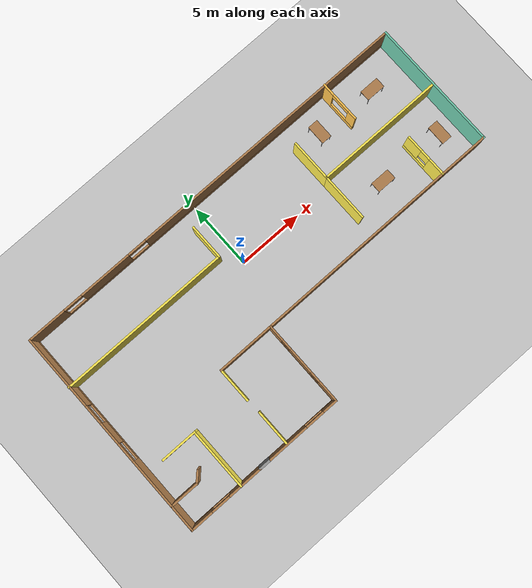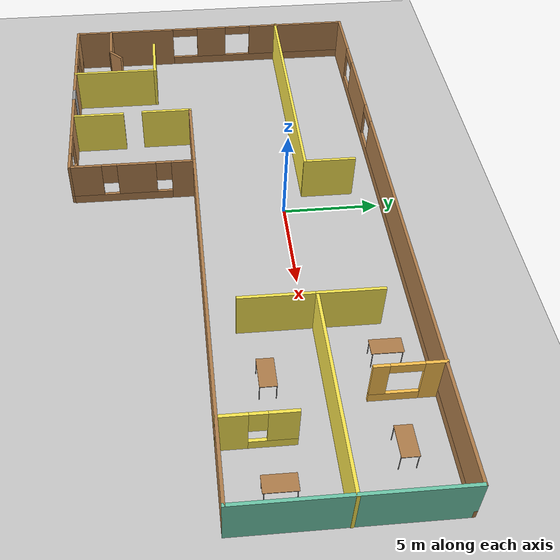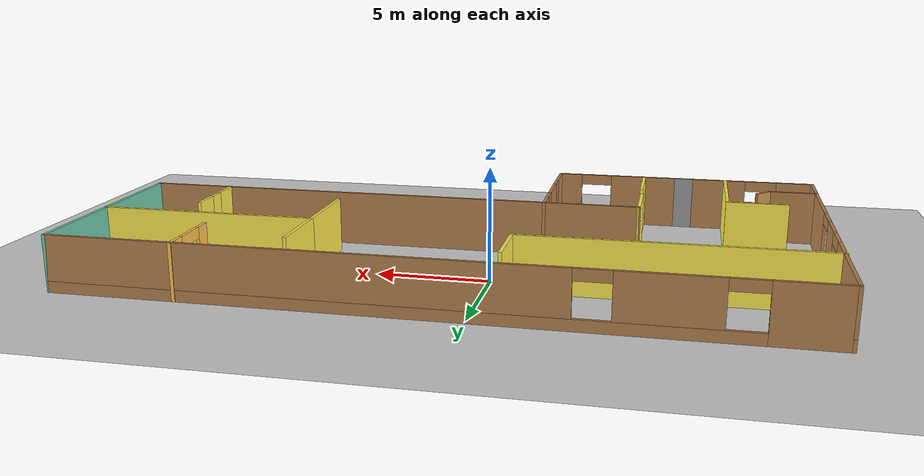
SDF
<sdf version="1.6">
 <world name="default">
  <model name="ground_plane">
   <static>1</static>
   <link name="link">
    <collision name="collision">
     <geometry><plane><normal>0 0 1</normal><size>100 100</size></plane></geometry>
     <surface>
      <contact><collide_bitmask>65535</collide_bitmask></contact>
      <friction><ode><mu>100</mu><mu2>50</mu2></ode></friction>
     </surface>
    </collision>
    <visual name="visual">
     <cast_shadows>0</cast_shadows>
     <geometry><plane><normal>0 0 1</normal><size>100 100</size></plane></geometry>
     <material>
      <script><uri>file://media/materials/scripts/gazebo.material</uri><name>Gazebo/Grey</name></script>
     </material>
    </visual>
   </link>
  </model>
  <model name="Building">
   <pose>1.74375 -2.92955 0 0 -0 0</pose>
   <link name="Door_0">
    <collision name="Door_0_Collision">
     <geometry><box><size>0.9 0.17 2.5</size></box></geometry>
     <pose>0 0 1.25 0 -0 0</pose>
    </collision>
    <visual name="Door_0_Visual">
     <pose>0 0 1.25 0 -0 0</pose>
     <geometry><box><size>0.9 0.17 2.5</size></box></geometry>
     <material>
      <script><uri>file://media/materials/scripts/gazebo.material</uri><name>Gazebo/Grey</name></script>
     </material>
    </visual>
    <pose>-9.65874 -8.18775 0 0 -0 0</pose>
   </link>
   <link name="Wall_1">
    <pose>-12.9888 -8.19111 0 0 -0 3.14159</pose>
    <visual name="Wall_1_Visual_0">
     <pose>-1.645 0 1.25 0 -0 0</pose>
     <geometry><box><size>2.71 0.15 2.5</size></box></geometry>
     <material>
      <script><uri>file://media/materials/scripts/gazebo.material</uri><name>Gazebo/Wood</name></script>
      <ambient>0.435294 0.796078 0.67451 1</ambient>
     </material>
     <meta><layer>0</layer></meta>
    </visual>
    <collision name="Wall_1_Collision_0">
     <geometry><box><size>2.71 0.15 2.5</size></box></geometry>
     <pose>-1.645 0 1.25 0 -0 0</pose>
    </collision>
    <visual name="Wall_1_Visual_1">
     <pose>1.355 0 0.25 0 -0 0</pose>
     <geometry><box><size>3.29 0.15 0.5</size></box></geometry>
     <material>
      <script><uri>file://media/materials/scripts/gazebo.material</uri><name>Gazebo/Wood</name></script>
      <ambient>0.435294 0.796078 0.67451 1</ambient>
     </material>
     <meta><layer>0</layer></meta>
    </visual>
    <collision name="Wall_1_Collision_1">
     <geometry><box><size>3.29 0.15 0.5</size></box></geometry>
     <pose>1.355 0 0.25 0 -0 0</pose>
    </collision>
    <visual name="Wall_1_Visual_2">
     <pose>2.105 0 1.5 0 -0 0</pose>
     <geometry><box><size>1.79 0.15 2</size></box></geometry>
     <material>
      <script><uri>file://media/materials/scripts/gazebo.material</uri><name>Gazebo/Wood</name></script>
      <ambient>0.435294 0.796078 0.67451 1</ambient>
     </material>
     <meta><layer>0</layer></meta>
    </visual>
    <collision name="Wall_1_Collision_2">
     <geometry><box><size>1.79 0.15 2</size></box></geometry>
     <pose>2.105 0 1.5 0 -0 0</pose>
    </collision>
    <visual name="Wall_1_Visual_3">
     <pose>0.46 0 2.25 0 -0 0</pose>
     <geometry><box><size>1.5 0.15 0.5</size></box></geometry>
     <material>
      <script><uri>file://media/materials/scripts/gazebo.material</uri><name>Gazebo/Wood</name></script>
      <ambient>0.435294 0.796078 0.67451 1</ambient>
     </material>
     <meta><layer>0</layer></meta>
    </visual>
    <collision name="Wall_1_Collision_3">
     <geometry><box><size>1.5 0.15 0.5</size></box></geometry>
     <pose>0.46 0 2.25 0 -0 0</pose>
    </collision>
   </link>
   <link name="Wall_11">
    <pose>-15.9138 -0.016115 0 0 -0 1.5708</pose>
    <visual name="Wall_11_Visual_0">
     <pose>-5.28758 0 1.25 0 -0 0</pose>
     <geometry><box><size>5.92484 0.15 2.5</size></box></geometry>
     <material>
      <script><uri>file://media/materials/scripts/gazebo.material</uri><name>Gazebo/Wood</name></script>
      <ambient>0.435294 0.796078 0.67451 1</ambient>
     </material>
     <meta><layer>0</layer></meta>
    </visual>
    <collision name="Wall_11_Collision_0">
     <geometry><box><size>5.92484 0.15 2.5</size></box></geometry>
     <pose>-5.28758 0 1.25 0 -0 0</pose>
    </collision>
    <visual name="Wall_11_Visual_1">
     <pose>2.96242 0 0.25 0 -0 0</pose>
     <geometry><box><size>10.5752 0.15 0.5</size></box></geometry>
     <material>
      <script><uri>file://media/materials/scripts/gazebo.material</uri><name>Gazebo/Wood</name></script>
      <ambient>0.435294 0.796078 0.67451 1</ambient>
     </material>
     <meta><layer>0</layer></meta>
    </visual>
    <collision name="Wall_11_Collision_1">
     <geometry><box><size>10.5752 0.15 0.5</size></box></geometry>
     <pose>2.96242 0 0.25 0 -0 0</pose>
    </collision>
    <visual name="Wall_11_Visual_2">
     <pose>0.058939 0 1.5 0 -0 0</pose>
     <geometry><box><size>1.76821 0.15 2</size></box></geometry>
     <material>
      <script><uri>file://media/materials/scripts/gazebo.material</uri><name>Gazebo/Wood</name></script>
      <ambient>0.435294 0.796078 0.67451 1</ambient>
     </material>
     <meta><layer>0</layer></meta>
    </visual>
    <collision name="Wall_11_Collision_2">
     <geometry><box><size>1.76821 0.15 2</size></box></geometry>
     <pose>0.058939 0 1.5 0 -0 0</pose>
    </collision>
    <visual name="Wall_11_Visual_3">
     <pose>5.34652 0 1.5 0 -0 0</pose>
     <geometry><box><size>5.80696 0.15 2</size></box></geometry>
     <material>
      <script><uri>file://media/materials/scripts/gazebo.material</uri><name>Gazebo/Wood</name></script>
      <ambient>0.435294 0.796078 0.67451 1</ambient>
     </material>
     <meta><layer>0</layer></meta>
    </visual>
    <collision name="Wall_11_Collision_3">
     <geometry><box><size>5.80696 0.15 2</size></box></geometry>
     <pose>5.34652 0 1.5 0 -0 0</pose>
    </collision>
    <visual name="Wall_11_Visual_4">
     <pose>-1.57516 0 2.25 0 -0 0</pose>
     <geometry><box><size>1.5 0.15 0.5</size></box></geometry>
     <material>
      <script><uri>file://media/materials/scripts/gazebo.material</uri><name>Gazebo/Wood</name></script>
      <ambient>0.435294 0.796078 0.67451 1</ambient>
     </material>
     <meta><layer>0</layer></meta>
    </visual>
    <collision name="Wall_11_Collision_4">
     <geometry><box><size>1.5 0.15 0.5</size></box></geometry>
     <pose>-1.57516 0 2.25 0 -0 0</pose>
    </collision>
    <visual name="Wall_11_Visual_5">
     <pose>1.69304 0 2.25 0 -0 0</pose>
     <geometry><box><size>1.5 0.15 0.5</size></box></geometry>
     <material>
      <script><uri>file://media/materials/scripts/gazebo.material</uri><name>Gazebo/Wood</name></script>
      <ambient>0.435294 0.796078 0.67451 1</ambient>
     </material>
     <meta><layer>0</layer></meta>
    </visual>
    <collision name="Wall_11_Collision_5">
     <geometry><box><size>1.5 0.15 0.5</size></box></geometry>
     <pose>1.69304 0 2.25 0 -0 0</pose>
    </collision>
   </link>
   <link name="Wall_12">
    <pose>0.011207 8.15888 0 0 -0 0</pose>
    <visual name="Wall_12_Visual_0">
     <pose>-14.4756 0 1.25 0 -0 0</pose>
     <geometry><box><size>3.04875 0.15 2.5</size></box></geometry>
     <material>
      <script><uri>file://media/materials/scripts/gazebo.material</uri><name>Gazebo/Wood</name></script>
      <ambient>0.435294 0.796078 0.67451 1</ambient>
     </material>
     <meta><layer>0</layer></meta>
    </visual>
    <collision name="Wall_12_Collision_0">
     <geometry><box><size>3.04875 0.15 2.5</size></box></geometry>
     <pose>-14.4756 0 1.25 0 -0 0</pose>
    </collision>
    <visual name="Wall_12_Visual_1">
     <pose>1.52438 0 0.25 0 -0 0</pose>
     <geometry><box><size>28.9513 0.15 0.5</size></box></geometry>
     <material>
      <script><uri>file://media/materials/scripts/gazebo.material</uri><name>Gazebo/Wood</name></script>
      <ambient>0.435294 0.796078 0.67451 1</ambient>
     </material>
     <meta><layer>0</layer></meta>
    </visual>
    <collision name="Wall_12_Collision_1">
     <geometry><box><size>28.9513 0.15 0.5</size></box></geometry>
     <pose>1.52438 0 0.25 0 -0 0</pose>
    </collision>
    <visual name="Wall_12_Visual_2">
     <pose>-9.39504 0 1.5 0 -0 0</pose>
     <geometry><box><size>4.11241 0.15 2</size></box></geometry>
     <material>
      <script><uri>file://media/materials/scripts/gazebo.material</uri><name>Gazebo/Wood</name></script>
      <ambient>0.435294 0.796078 0.67451 1</ambient>
     </material>
     <meta><layer>0</layer></meta>
    </visual>
    <collision name="Wall_12_Collision_2">
     <geometry><box><size>4.11241 0.15 2</size></box></geometry>
     <pose>-9.39504 0 1.5 0 -0 0</pose>
    </collision>
    <visual name="Wall_12_Visual_3">
     <pose>5.08058 0 1.5 0 -0 0</pose>
     <geometry><box><size>21.8388 0.15 2</size></box></geometry>
     <material>
      <script><uri>file://media/materials/scripts/gazebo.material</uri><name>Gazebo/Wood</name></script>
      <ambient>0.435294 0.796078 0.67451 1</ambient>
     </material>
     <meta><layer>0</layer></meta>
    </visual>
    <collision name="Wall_12_Collision_3">
     <geometry><box><size>21.8388 0.15 2</size></box></geometry>
     <pose>5.08058 0 1.5 0 -0 0</pose>
    </collision>
    <visual name="Wall_12_Visual_4">
     <pose>-12.2012 0 2.25 0 -0 0</pose>
     <geometry><box><size>1.5 0.15 0.5</size></box></geometry>
     <material>
      <script><uri>file://media/materials/scripts/gazebo.material</uri><name>Gazebo/Wood</name></script>
      <ambient>0.435294 0.796078 0.67451 1</ambient>
     </material>
     <meta><layer>0</layer></meta>
    </visual>
    <collision name="Wall_12_Collision_4">
     <geometry><box><size>1.5 0.15 0.5</size></box></geometry>
     <pose>-12.2012 0 2.25 0 -0 0</pose>
    </collision>
    <visual name="Wall_12_Visual_5">
     <pose>-6.58884 0 2.25 0 -0 0</pose>
     <geometry><box><size>1.5 0.15 0.5</size></box></geometry>
     <material>
      <script><uri>file://media/materials/scripts/gazebo.material</uri><name>Gazebo/Wood</name></script>
      <ambient>0.435294 0.796078 0.67451 1</ambient>
     </material>
     <meta><layer>0</layer></meta>
    </visual>
    <collision name="Wall_12_Collision_5">
     <geometry><box><size>1.5 0.15 0.5</size></box></geometry>
     <pose>-6.58884 0 2.25 0 -0 0</pose>
    </collision>
   </link>
   <link name="Wall_13">
    <collision name="Wall_13_Collision">
     <geometry><box><size>10 0.15 2.5</size></box></geometry>
     <pose>0 0 1.25 0 -0 0</pose>
    </collision>
    <visual name="Wall_13_Visual">
     <pose>0 0 1.25 0 -0 0</pose>
     <geometry><box><size>10 0.15 2.5</size></box></geometry>
     <material>
      <script><uri>file://media/materials/scripts/gazebo.material</uri><name>Gazebo/Grey</name></script>
      <ambient>0.435294 0.796078 0.67451 1</ambient>
     </material>
     <meta><layer>0</layer></meta>
    </visual>
    <pose>15.9362 3.23388 0 0 -0 -1.5708</pose>
   </link>
   <link name="Wall_14">
    <collision name="Wall_14_Collision">
     <geometry><box><size>19.4856 0.15 2.5</size></box></geometry>
     <pose>0 0 1.25 0 -0 0</pose>
    </collision>
    <visual name="Wall_14_Visual">
     <pose>0 0 1.25 0 -0 0</pose>
     <geometry><box><size>19.4856 0.15 2.5</size></box></geometry>
     <material>
      <script><uri>file://media/materials/scripts/gazebo.material</uri><name>Gazebo/Wood</name></script>
      <ambient>0.435294 0.796078 0.67451 1</ambient>
     </material>
     <meta><layer>0</layer></meta>
    </visual>
    <pose>6.26821 -1.69111 0 0 -0 3.14159</pose>
   </link>
   <link name="Wall_15">
    <pose>-3.39979 -4.87312 0 0 -0 -1.5708</pose>
    <visual name="Wall_15_Visual_0">
     <pose>-2.61589 0 1.25 0 -0 0</pose>
     <geometry><box><size>1.28264 0.15 2.5</size></box></geometry>
     <material>
      <script><uri>file://media/materials/scripts/gazebo.material</uri><name>Gazebo/Wood</name></script>
      <ambient>0.435294 0.796078 0.67451 1</ambient>
     </material>
     <meta><layer>0</layer></meta>
    </visual>
    <collision name="Wall_15_Collision_0">
     <geometry><box><size>1.28264 0.15 2.5</size></box></geometry>
     <pose>-2.61589 0 1.25 0 -0 0</pose>
    </collision>
    <visual name="Wall_15_Visual_1">
     <pose>0.641319 0 0.25 0 -0 0</pose>
     <geometry><box><size>5.23177 0.15 0.5</size></box></geometry>
     <material>
      <script><uri>file://media/materials/scripts/gazebo.material</uri><name>Gazebo/Wood</name></script>
      <ambient>0.435294 0.796078 0.67451 1</ambient>
     </material>
     <meta><layer>0</layer></meta>
    </visual>
    <collision name="Wall_15_Collision_1">
     <geometry><box><size>5.23177 0.15 0.5</size></box></geometry>
     <pose>0.641319 0 0.25 0 -0 0</pose>
    </collision>
    <visual name="Wall_15_Visual_2">
     <pose>-0.15997 0 1.5 0 -0 0</pose>
     <geometry><box><size>2.02919 0.15 2</size></box></geometry>
     <material>
      <script><uri>file://media/materials/scripts/gazebo.material</uri><name>Gazebo/Wood</name></script>
      <ambient>0.435294 0.796078 0.67451 1</ambient>
     </material>
     <meta><layer>0</layer></meta>
    </visual>
    <collision name="Wall_15_Collision_2">
     <geometry><box><size>2.02919 0.15 2</size></box></geometry>
     <pose>-0.15997 0 1.5 0 -0 0</pose>
    </collision>
    <visual name="Wall_15_Visual_3">
     <pose>2.45592 0 1.5 0 -0 0</pose>
     <geometry><box><size>1.60258 0.15 2</size></box></geometry>
     <material>
      <script><uri>file://media/materials/scripts/gazebo.material</uri><name>Gazebo/Wood</name></script>
      <ambient>0.435294 0.796078 0.67451 1</ambient>
     </material>
     <meta><layer>0</layer></meta>
    </visual>
    <collision name="Wall_15_Collision_3">
     <geometry><box><size>1.60258 0.15 2</size></box></geometry>
     <pose>2.45592 0 1.5 0 -0 0</pose>
    </collision>
    <visual name="Wall_15_Visual_4">
     <pose>-1.57457 0 1.9 0 -0 0</pose>
     <geometry><box><size>0.8 0.15 1.2</size></box></geometry>
     <material>
      <script><uri>file://media/materials/scripts/gazebo.material</uri><name>Gazebo/Wood</name></script>
      <ambient>0.435294 0.796078 0.67451 1</ambient>
     </material>
     <meta><layer>0</layer></meta>
    </visual>
    <collision name="Wall_15_Collision_4">
     <geometry><box><size>0.8 0.15 1.2</size></box></geometry>
     <pose>-1.57457 0 1.9 0 -0 0</pose>
    </collision>
    <visual name="Wall_15_Visual_5">
     <pose>1.25463 0 1.9 0 -0 0</pose>
     <geometry><box><size>0.8 0.15 1.2</size></box></geometry>
     <material>
      <script><uri>file://media/materials/scripts/gazebo.material</uri><name>Gazebo/Wood</name></script>
      <ambient>0.435294 0.796078 0.67451 1</ambient>
     </material>
     <meta><layer>0</layer></meta>
    </visual>
    <collision name="Wall_15_Collision_5">
     <geometry><box><size>0.8 0.15 1.2</size></box></geometry>
     <pose>1.25463 0 1.9 0 -0 0</pose>
    </collision>
   </link>
   <link name="Wall_20">
    <collision name="Wall_20_Collision">
     <geometry><box><size>4.5 0.15 2.5</size></box></geometry>
     <pose>0 0 1.25 0 -0 0</pose>
    </collision>
    <visual name="Wall_20_Visual">
     <pose>0 0 1.25 0 -0 0</pose>
     <geometry><box><size>4.5 0.15 2.5</size></box></geometry>
     <material>
      <script><uri>file://media/materials/scripts/gazebo.material</uri><name>Gazebo/Wood</name></script>
      <ambient>0.988235 0.913725 0.309804 1</ambient>
     </material>
     <meta><layer>0</layer></meta>
    </visual>
    <pose>-5.57479 -1.69111 0 0 -0 -3.14159</pose>
   </link>
   <link name="Wall_21">
    <collision name="Wall_21_Collision">
     <geometry><box><size>2.76441 0.15 2.5</size></box></geometry>
     <pose>0 0 1.25 0 -0 0</pose>
    </collision>
    <visual name="Wall_21_Visual">
     <pose>0 0 1.25 0 -0 0</pose>
     <geometry><box><size>2.76441 0.15 2.5</size></box></geometry>
     <material>
      <script><uri>file://media/materials/scripts/gazebo.material</uri><name>Gazebo/Grey</name></script>
      <ambient>0.988235 0.913725 0.309804 1</ambient>
     </material>
     <meta><layer>0</layer></meta>
    </visual>
    <pose>-7.74959 -2.99832 0 0 -0 -1.57064</pose>
   </link>
   <link name="Wall_23">
    <collision name="Wall_23_Collision">
     <geometry><box><size>2.75 0.15 2.5</size></box></geometry>
     <pose>0 0 1.25 0 -0 0</pose>
    </collision>
    <visual name="Wall_23_Visual">
     <pose>0 0 1.25 0 -0 0</pose>
     <geometry><box><size>2.75 0.15 2.5</size></box></geometry>
     <material>
      <script><uri>file://media/materials/scripts/gazebo.material</uri><name>Gazebo/Grey</name></script>
      <ambient>0.988235 0.913725 0.309804 1</ambient>
     </material>
     <meta><layer>0</layer></meta>
    </visual>
    <pose>-7.68166 -6.75545 0 0 -0 -1.5708</pose>
   </link>
   <link name="Wall_27">
    <collision name="Wall_27_Collision">
     <geometry><box><size>10 0.15 2.5</size></box></geometry>
     <pose>0 0 1.25 0 -0 0</pose>
    </collision>
    <visual name="Wall_27_Visual">
     <pose>0 0 1.25 0 -0 0</pose>
     <geometry><box><size>10 0.15 2.5</size></box></geometry>
     <material>
      <script><uri>file://media/materials/scripts/gazebo.material</uri><name>Gazebo/Grey</name></script>
      <ambient>0.988235 0.913725 0.309804 1</ambient>
     </material>
     <meta><layer>0</layer></meta>
    </visual>
    <pose>11.0323 3.33245 0 0 -0 3.14159</pose>
   </link>
   <link name="Wall_28">
    <collision name="Wall_28_Collision">
     <geometry><box><size>3.25 0.15 2.5</size></box></geometry>
     <pose>0 0 1.25 0 -0 0</pose>
    </collision>
    <visual name="Wall_28_Visual">
     <pose>0 0 1.25 0 -0 0</pose>
     <geometry><box><size>3.25 0.15 2.5</size></box></geometry>
     <material>
      <script><uri>file://media/materials/scripts/gazebo.material</uri><name>Gazebo/Grey</name></script>
      <ambient>0.988235 0.913725 0.309804 1</ambient>
     </material>
     <meta><layer>0</layer></meta>
    </visual>
    <pose>6.10728 4.88245 0 0 -0 1.5708</pose>
   </link>
   <link name="Wall_3">
    <pose>-6.29879 -8.19111 0 0 -0 0</pose>
    <visual name="Wall_3_Visual_0">
     <pose>-1.32758 0 1.25 0 -0 0</pose>
     <geometry><box><size>3.24484 0.15 2.5</size></box></geometry>
     <material>
      <script><uri>file://media/materials/scripts/gazebo.material</uri><name>Gazebo/Wood</name></script>
      <ambient>0.435294 0.796078 0.67451 1</ambient>
     </material>
     <meta><layer>0</layer></meta>
    </visual>
    <collision name="Wall_3_Collision_0">
     <geometry><box><size>3.24484 0.15 2.5</size></box></geometry>
     <pose>-1.32758 0 1.25 0 -0 0</pose>
    </collision>
    <visual name="Wall_3_Visual_1">
     <pose>1.62242 0 0.25 0 -0 0</pose>
     <geometry><box><size>2.65516 0.15 0.5</size></box></geometry>
     <material>
      <script><uri>file://media/materials/scripts/gazebo.material</uri><name>Gazebo/Wood</name></script>
      <ambient>0.435294 0.796078 0.67451 1</ambient>
     </material>
     <meta><layer>0</layer></meta>
    </visual>
    <collision name="Wall_3_Collision_1">
     <geometry><box><size>2.65516 0.15 0.5</size></box></geometry>
     <pose>1.62242 0 0.25 0 -0 0</pose>
    </collision>
    <visual name="Wall_3_Visual_2">
     <pose>2.37242 0 1.5 0 -0 0</pose>
     <geometry><box><size>1.15516 0.15 2</size></box></geometry>
     <material>
      <script><uri>file://media/materials/scripts/gazebo.material</uri><name>Gazebo/Wood</name></script>
      <ambient>0.435294 0.796078 0.67451 1</ambient>
     </material>
     <meta><layer>0</layer></meta>
    </visual>
    <collision name="Wall_3_Collision_2">
     <geometry><box><size>1.15516 0.15 2</size></box></geometry>
     <pose>2.37242 0 1.5 0 -0 0</pose>
    </collision>
    <visual name="Wall_3_Visual_3">
     <pose>1.04484 0 2.25 0 -0 0</pose>
     <geometry><box><size>1.5 0.15 0.5</size></box></geometry>
     <material>
      <script><uri>file://media/materials/scripts/gazebo.material</uri><name>Gazebo/Wood</name></script>
      <ambient>0.435294 0.796078 0.67451 1</ambient>
     </material>
     <meta><layer>0</layer></meta>
    </visual>
    <collision name="Wall_3_Collision_3">
     <geometry><box><size>1.5 0.15 0.5</size></box></geometry>
     <pose>1.04484 0 2.25 0 -0 0</pose>
    </collision>
   </link>
   <link name="Wall_30">
    <collision name="Wall_30_Collision">
     <geometry><box><size>3.75 0.15 2.5</size></box></geometry>
     <pose>0 0 1.25 0 -0 0</pose>
    </collision>
    <visual name="Wall_30_Visual">
     <pose>0 0 1.25 0 -0 0</pose>
     <geometry><box><size>3.75 0.15 2.5</size></box></geometry>
     <material>
      <script><uri>file://media/materials/scripts/gazebo.material</uri><name>Gazebo/Grey</name></script>
      <ambient>0.988235 0.913725 0.309804 1</ambient>
     </material>
     <meta><layer>0</layer></meta>
    </visual>
    <pose>6.10728 1.53245 0 0 -0 -1.5708</pose>
   </link>
   <link name="Wall_32">
    <collision name="Wall_32_Collision">
     <geometry><box><size>13.25 0.15 2.5</size></box></geometry>
     <pose>0 0 1.25 0 -0 0</pose>
    </collision>
    <visual name="Wall_32_Visual">
     <pose>0 0 1.25 0 -0 0</pose>
     <geometry><box><size>13.25 0.15 2.5</size></box></geometry>
     <material>
      <script><uri>file://media/materials/scripts/gazebo.material</uri><name>Gazebo/Grey</name></script>
      <ambient>0.988235 0.913725 0.309804 1</ambient>
     </material>
     <meta><layer>0</layer></meta>
    </visual>
    <pose>-9.40728 4.07713 0 0 -0 0</pose>
   </link>
   <link name="Wall_33">
    <collision name="Wall_33_Collision">
     <geometry><box><size>2.75 0.15 2.5</size></box></geometry>
     <pose>0 0 1.25 0 -0 0</pose>
    </collision>
    <visual name="Wall_33_Visual">
     <pose>0 0 1.25 0 -0 0</pose>
     <geometry><box><size>2.75 0.15 2.5</size></box></geometry>
     <material>
      <script><uri>file://media/materials/scripts/gazebo.material</uri><name>Gazebo/Grey</name></script>
      <ambient>0.988235 0.913725 0.309804 1</ambient>
     </material>
     <meta><layer>0</layer></meta>
    </visual>
    <pose>-2.85728 5.37713 0 0 -0 1.5708</pose>
   </link>
   <link name="Wall_37">
    <pose>12.1544 -0.018507 0 0 -0 1.5708</pose>
    <visual name="Wall_37_Visual_0">
     <pose>-1.05653 0 1.25 0 -0 0</pose>
     <geometry><box><size>1.38694 0.15 2.5</size></box></geometry>
     <material>
      <script><uri>file://media/materials/scripts/gazebo.material</uri><name>Gazebo/Grey</name></script>
      <ambient>0.988235 0.913725 0.309804 1</ambient>
     </material>
     <meta><layer>0</layer></meta>
    </visual>
    <collision name="Wall_37_Collision_0">
     <geometry><box><size>1.38694 0.15 2.5</size></box></geometry>
     <pose>-1.05653 0 1.25 0 -0 0</pose>
    </collision>
    <visual name="Wall_37_Visual_1">
     <pose>0.693471 0 0.25 0 -0 0</pose>
     <geometry><box><size>2.11306 0.15 0.5</size></box></geometry>
     <material>
      <script><uri>file://media/materials/scripts/gazebo.material</uri><name>Gazebo/Grey</name></script>
      <ambient>0.988235 0.913725 0.309804 1</ambient>
     </material>
     <meta><layer>0</layer></meta>
    </visual>
    <collision name="Wall_37_Collision_1">
     <geometry><box><size>2.11306 0.15 0.5</size></box></geometry>
     <pose>0.693471 0 0.25 0 -0 0</pose>
    </collision>
    <visual name="Wall_37_Visual_2">
     <pose>1.09347 0 1.5 0 -0 0</pose>
     <geometry><box><size>1.31306 0.15 2</size></box></geometry>
     <material>
      <script><uri>file://media/materials/scripts/gazebo.material</uri><name>Gazebo/Grey</name></script>
      <ambient>0.988235 0.913725 0.309804 1</ambient>
     </material>
     <meta><layer>0</layer></meta>
    </visual>
    <collision name="Wall_37_Collision_2">
     <geometry><box><size>1.31306 0.15 2</size></box></geometry>
     <pose>1.09347 0 1.5 0 -0 0</pose>
    </collision>
    <visual name="Wall_37_Visual_3">
     <pose>0.036942 0 1.9 0 -0 0</pose>
     <geometry><box><size>0.8 0.15 1.2</size></box></geometry>
     <material>
      <script><uri>file://media/materials/scripts/gazebo.material</uri><name>Gazebo/Grey</name></script>
      <ambient>0.988235 0.913725 0.309804 1</ambient>
     </material>
     <meta><layer>0</layer></meta>
    </visual>
    <collision name="Wall_37_Collision_3">
     <geometry><box><size>0.8 0.15 1.2</size></box></geometry>
     <pose>0.036942 0 1.9 0 -0 0</pose>
    </collision>
   </link>
   <link name="Wall_39">
    <collision name="Wall_39_Collision">
     <geometry><box><size>4.75 0.15 2.5</size></box></geometry>
     <pose>0 0 1.25 0 -0 0</pose>
    </collision>
    <visual name="Wall_39_Visual">
     <pose>0 0 1.25 0 -0 0</pose>
     <geometry><box><size>4.75 0.15 2.5</size></box></geometry>
     <material>
      <script><uri>file://media/materials/scripts/gazebo.material</uri><name>Gazebo/Grey</name></script>
      <ambient>0.988235 0.913725 0.309804 1</ambient>
     </material>
     <meta><layer>0</layer></meta>
    </visual>
    <pose>-11.7048 -5.87777 0 0 -0 1.5708</pose>
   </link>
   <link name="Wall_40">
    <collision name="Wall_40_Collision">
     <geometry><box><size>2.84281 0.15 2.5</size></box></geometry>
     <pose>0 0 1.25 0 -0 0</pose>
    </collision>
    <visual name="Wall_40_Visual">
     <pose>0 0 1.25 0 -0 0</pose>
     <geometry><box><size>2.84281 0.15 2.5</size></box></geometry>
     <material>
      <script><uri>file://media/materials/scripts/gazebo.material</uri><name>Gazebo/Grey</name></script>
      <ambient>0.988235 0.913725 0.309804 1</ambient>
     </material>
     <meta><layer>0</layer></meta>
    </visual>
    <pose>-13.0509 -3.56347 0 0 -0 3.14159</pose>
   </link>
   <link name="Wall_42">
    <pose>10.3041 6.64112 0 0 -0 -1.5708</pose>
    <visual name="Wall_42_Visual_0">
     <pose>-1.11989 0 1.25 0 -0 0</pose>
     <geometry><box><size>1.01023 0.15 2.5</size></box></geometry>
     <material>
      <script><uri>file://media/materials/scripts/gazebo.material</uri><name>Gazebo/Grey</name></script>
      <ambient>1 0.764706 0.305882 1</ambient>
     </material>
     <meta><layer>0</layer></meta>
    </visual>
    <collision name="Wall_42_Collision_0">
     <geometry><box><size>1.01023 0.15 2.5</size></box></geometry>
     <pose>-1.11989 0 1.25 0 -0 0</pose>
    </collision>
    <visual name="Wall_42_Visual_1">
     <pose>0.505115 0 0.25 0 -0 0</pose>
     <geometry><box><size>2.23977 0.15 0.5</size></box></geometry>
     <material>
      <script><uri>file://media/materials/scripts/gazebo.material</uri><name>Gazebo/Grey</name></script>
      <ambient>1 0.764706 0.305882 1</ambient>
     </material>
     <meta><layer>0</layer></meta>
    </visual>
    <collision name="Wall_42_Collision_1">
     <geometry><box><size>2.23977 0.15 0.5</size></box></geometry>
     <pose>0.505115 0 0.25 0 -0 0</pose>
    </collision>
    <visual name="Wall_42_Visual_2">
     <pose>1.25511 0 1.5 0 -0 0</pose>
     <geometry><box><size>0.73977 0.15 2</size></box></geometry>
     <material>
      <script><uri>file://media/materials/scripts/gazebo.material</uri><name>Gazebo/Grey</name></script>
      <ambient>1 0.764706 0.305882 1</ambient>
     </material>
     <meta><layer>0</layer></meta>
    </visual>
    <collision name="Wall_42_Collision_2">
     <geometry><box><size>0.73977 0.15 2</size></box></geometry>
     <pose>1.25511 0 1.5 0 -0 0</pose>
    </collision>
    <visual name="Wall_42_Visual_3">
     <pose>0.13523 0 2.25 0 -0 0</pose>
     <geometry><box><size>1.5 0.15 0.5</size></box></geometry>
     <material>
      <script><uri>file://media/materials/scripts/gazebo.material</uri><name>Gazebo/Grey</name></script>
      <ambient>1 0.764706 0.305882 1</ambient>
     </material>
     <meta><layer>0</layer></meta>
    </visual>
    <collision name="Wall_42_Collision_3">
     <geometry><box><size>1.5 0.15 0.5</size></box></geometry>
     <pose>0.13523 0 2.25 0 -0 0</pose>
    </collision>
   </link>
   <link name="Wall_44">
    <collision name="Wall_44_Collision">
     <geometry><box><size>2.25 0.15 2.5</size></box></geometry>
     <pose>0 0 1.25 0 -0 0</pose>
    </collision>
    <visual name="Wall_44_Visual">
     <pose>0 0 1.25 0 -0 0</pose>
     <geometry><box><size>2.25 0.15 2.5</size></box></geometry>
     <material>
      <script><uri>file://media/materials/scripts/gazebo.material</uri><name>Gazebo/Wood</name></script>
      <ambient>1 1 1 1</ambient>
     </material>
     <meta><layer>0</layer></meta>
    </visual>
    <pose>-14.8157 -6.17006 0 0 -0 0</pose>
   </link>
   <link name="Wall_45">
    <collision name="Wall_45_Collision">
     <geometry><box><size>1 0.15 2.5</size></box></geometry>
     <pose>0 0 1.25 0 -0 0</pose>
    </collision>
    <visual name="Wall_45_Visual">
     <pose>0 0 1.25 0 -0 0</pose>
     <geometry><box><size>1 0.15 2.5</size></box></geometry>
     <material>
      <script><uri>file://media/materials/scripts/gazebo.material</uri><name>Gazebo/Wood</name></script>
      <ambient>1 1 1 1</ambient>
     </material>
     <meta><layer>0</layer></meta>
    </visual>
    <pose>-13.4652 -5.86954 0 0 -0 0.785398</pose>
   </link>
   <static>1</static>
  </model>
  <model name="table_2">
   <static>1</static>
   <link name="link">
    <collision name="surface">
     <pose>0 0 1 0 -0 0</pose>
     <geometry><box><size>1.5 0.8 0.03</size></box></geometry>
     <surface><friction><ode><mu>0.6</mu><mu2>0.6</mu2></ode></friction></surface>
    </collision>
    <visual name="visual1">
     <pose>0 0 1 0 -0 0</pose>
     <geometry><box><size>1.5 0.8 0.03</size></box></geometry>
     <material>
      <script><uri>file://media/materials/scripts/gazebo.material</uri><name>Gazebo/Wood</name></script>
     </material>
    </visual>
    <collision name="front_left_leg">
     <pose>0.68 0.38 0.5 0 -0 0</pose>
     <geometry><cylinder><radius>0.02</radius><length>1</length></cylinder></geometry>
    </collision>
    <visual name="front_left_leg">
     <pose>0.68 0.38 0.5 0 -0 0</pose>
     <geometry><cylinder><radius>0.02</radius><length>1</length></cylinder></geometry>
     <material>
      <script><uri>file://media/materials/scripts/gazebo.material</uri><name>Gazebo/Grey</name></script>
     </material>
    </visual>
    <collision name="front_right_leg">
     <pose>0.68 -0.38 0.5 0 -0 0</pose>
     <geometry><cylinder><radius>0.02</radius><length>1</length></cylinder></geometry>
    </collision>
    <visual name="front_right_leg">
     <pose>0.68 -0.38 0.5 0 -0 0</pose>
     <geometry><cylinder><radius>0.02</radius><length>1</length></cylinder></geometry>
     <material>
      <script><uri>file://media/materials/scripts/gazebo.material</uri><name>Gazebo/Grey</name></script>
     </material>
    </visual>
    <collision name="back_right_leg">
     <pose>-0.68 -0.38 0.5 0 -0 0</pose>
     <geometry><cylinder><radius>0.02</radius><length>1</length></cylinder></geometry>
    </collision>
    <visual name="back_right_leg">
     <pose>-0.68 -0.38 0.5 0 -0 0</pose>
     <geometry><cylinder><radius>0.02</radius><length>1</length></cylinder></geometry>
     <material>
      <script><uri>file://media/materials/scripts/gazebo.material</uri><name>Gazebo/Grey</name></script>
     </material>
    </visual>
    <collision name="back_left_leg">
     <pose>-0.68 0.38 0.5 0 -0 0</pose>
     <geometry><cylinder><radius>0.02</radius><length>1</length></cylinder></geometry>
    </collision>
    <visual name="back_left_leg">
     <pose>-0.68 0.38 0.5 0 -0 0</pose>
     <geometry><cylinder><radius>0.02</radius><length>1</length></cylinder></geometry>
     <material>
      <script><uri>file://media/materials/scripts/gazebo.material</uri><name>Gazebo/Grey</name></script>
     </material>
    </visual>
   </link>
   <pose>10.9334 -2.20612 0 0 -0 0</pose>
  </model>
  <model name="table_3">
   <static>1</static>
   <link name="link">
    <collision name="surface">
     <pose>0 0 1 0 -0 0</pose>
     <geometry><box><size>1.5 0.8 0.03</size></box></geometry>
     <surface><friction><ode><mu>0.6</mu><mu2>0.6</mu2></ode></friction></surface>
    </collision>
    <visual name="visual1">
     <pose>0 0 1 0 -0 0</pose>
     <geometry><box><size>1.5 0.8 0.03</size></box></geometry>
     <material>
      <script><uri>file://media/materials/scripts/gazebo.material</uri><name>Gazebo/Wood</name></script>
     </material>
    </visual>
    <collision name="front_left_leg">
     <pose>0.68 0.38 0.5 0 -0 0</pose>
     <geometry><cylinder><radius>0.02</radius><length>1</length></cylinder></geometry>
    </collision>
    <visual name="front_left_leg">
     <pose>0.68 0.38 0.5 0 -0 0</pose>
     <geometry><cylinder><radius>0.02</radius><length>1</length></cylinder></geometry>
     <material>
      <script><uri>file://media/materials/scripts/gazebo.material</uri><name>Gazebo/Grey</name></script>
     </material>
    </visual>
    <collision name="front_right_leg">
     <pose>0.68 -0.38 0.5 0 -0 0</pose>
     <geometry><cylinder><radius>0.02</radius><length>1</length></cylinder></geometry>
    </collision>
    <visual name="front_right_leg">
     <pose>0.68 -0.38 0.5 0 -0 0</pose>
     <geometry><cylinder><radius>0.02</radius><length>1</length></cylinder></geometry>
     <material>
      <script><uri>file://media/materials/scripts/gazebo.material</uri><name>Gazebo/Grey</name></script>
     </material>
    </visual>
    <collision name="back_right_leg">
     <pose>-0.68 -0.38 0.5 0 -0 0</pose>
     <geometry><cylinder><radius>0.02</radius><length>1</length></cylinder></geometry>
    </collision>
    <visual name="back_right_leg">
     <pose>-0.68 -0.38 0.5 0 -0 0</pose>
     <geometry><cylinder><radius>0.02</radius><length>1</length></cylinder></geometry>
     <material>
      <script><uri>file://media/materials/scripts/gazebo.material</uri><name>Gazebo/Grey</name></script>
     </material>
    </visual>
    <collision name="back_left_leg">
     <pose>-0.68 0.38 0.5 0 -0 0</pose>
     <geometry><cylinder><radius>0.02</radius><length>1</length></cylinder></geometry>
    </collision>
    <visual name="back_left_leg">
     <pose>-0.68 0.38 0.5 0 -0 0</pose>
     <geometry><cylinder><radius>0.02</radius><length>1</length></cylinder></geometry>
     <material>
      <script><uri>file://media/materials/scripts/gazebo.material</uri><name>Gazebo/Grey</name></script>
     </material>
    </visual>
   </link>
   <pose>14.7616 3.11764 0 0 -0 0</pose>
  </model>
  <model name="table_clone_3">
   <static>1</static>
   <link name="link">
    <collision name="surface">
     <pose>0 0 1 0 -0 0</pose>
     <geometry><box><size>1.5 0.8 0.03</size></box></geometry>
     <surface><friction><ode><mu>0.6</mu><mu2>0.6</mu2></ode></friction></surface>
    </collision>
    <visual name="visual1">
     <pose>0 0 1 0 -0 0</pose>
     <geometry><box><size>1.5 0.8 0.03</size></box></geometry>
     <material>
      <script><uri>file://media/materials/scripts/gazebo.material</uri><name>Gazebo/Wood</name></script>
     </material>
    </visual>
    <collision name="front_left_leg">
     <pose>0.68 0.38 0.5 0 -0 0</pose>
     <geometry><cylinder><radius>0.02</radius><length>1</length></cylinder></geometry>
    </collision>
    <visual name="front_left_leg">
     <pose>0.68 0.38 0.5 0 -0 0</pose>
     <geometry><cylinder><radius>0.02</radius><length>1</length></cylinder></geometry>
     <material>
      <script><uri>file://media/materials/scripts/gazebo.material</uri><name>Gazebo/Grey</name></script>
     </material>
    </visual>
    <collision name="front_right_leg">
     <pose>0.68 -0.38 0.5 0 -0 0</pose>
     <geometry><cylinder><radius>0.02</radius><length>1</length></cylinder></geometry>
    </collision>
    <visual name="front_right_leg">
     <pose>0.68 -0.38 0.5 0 -0 0</pose>
     <geometry><cylinder><radius>0.02</radius><length>1</length></cylinder></geometry>
     <material>
      <script><uri>file://media/materials/scripts/gazebo.material</uri><name>Gazebo/Grey</name></script>
     </material>
    </visual>
    <collision name="back_right_leg">
     <pose>-0.68 -0.38 0.5 0 -0 0</pose>
     <geometry><cylinder><radius>0.02</radius><length>1</length></cylinder></geometry>
    </collision>
    <visual name="back_right_leg">
     <pose>-0.68 -0.38 0.5 0 -0 0</pose>
     <geometry><cylinder><radius>0.02</radius><length>1</length></cylinder></geometry>
     <material>
      <script><uri>file://media/materials/scripts/gazebo.material</uri><name>Gazebo/Grey</name></script>
     </material>
    </visual>
    <collision name="back_left_leg">
     <pose>-0.68 0.38 0.5 0 -0 0</pose>
     <geometry><cylinder><radius>0.02</radius><length>1</length></cylinder></geometry>
    </collision>
    <visual name="back_left_leg">
     <pose>-0.68 0.38 0.5 0 -0 0</pose>
     <geometry><cylinder><radius>0.02</radius><length>1</length></cylinder></geometry>
     <material>
      <script><uri>file://media/materials/scripts/gazebo.material</uri><name>Gazebo/Grey</name></script>
     </material>
    </visual>
   </link>
   <pose>16.1844 -2.27163 0 0 0 -1.57545</pose>
  </model>
  <model name="table_clone_4">
   <static>1</static>
   <link name="link">
    <collision name="surface">
     <pose>0 0 1 0 -0 0</pose>
     <geometry><box><size>1.5 0.8 0.03</size></box></geometry>
     <surface><friction><ode><mu>0.6</mu><mu2>0.6</mu2></ode></friction></surface>
    </collision>
    <visual name="visual1">
     <pose>0 0 1 0 -0 0</pose>
     <geometry><box><size>1.5 0.8 0.03</size></box></geometry>
     <material>
      <script><uri>file://media/materials/scripts/gazebo.material</uri><name>Gazebo/Wood</name></script>
     </material>
    </visual>
    <collision name="front_left_leg">
     <pose>0.68 0.38 0.5 0 -0 0</pose>
     <geometry><cylinder><radius>0.02</radius><length>1</length></cylinder></geometry>
    </collision>
    <visual name="front_left_leg">
     <pose>0.68 0.38 0.5 0 -0 0</pose>
     <geometry><cylinder><radius>0.02</radius><length>1</length></cylinder></geometry>
     <material>
      <script><uri>file://media/materials/scripts/gazebo.material</uri><name>Gazebo/Grey</name></script>
     </material>
    </visual>
    <collision name="front_right_leg">
     <pose>0.68 -0.38 0.5 0 -0 0</pose>
     <geometry><cylinder><radius>0.02</radius><length>1</length></cylinder></geometry>
    </collision>
    <visual name="front_right_leg">
     <pose>0.68 -0.38 0.5 0 -0 0</pose>
     <geometry><cylinder><radius>0.02</radius><length>1</length></cylinder></geometry>
     <material>
      <script><uri>file://media/materials/scripts/gazebo.material</uri><name>Gazebo/Grey</name></script>
     </material>
    </visual>
    <collision name="back_right_leg">
     <pose>-0.68 -0.38 0.5 0 -0 0</pose>
     <geometry><cylinder><radius>0.02</radius><length>1</length></cylinder></geometry>
    </collision>
    <visual name="back_right_leg">
     <pose>-0.68 -0.38 0.5 0 -0 0</pose>
     <geometry><cylinder><radius>0.02</radius><length>1</length></cylinder></geometry>
     <material>
      <script><uri>file://media/materials/scripts/gazebo.material</uri><name>Gazebo/Grey</name></script>
     </material>
    </visual>
    <collision name="back_left_leg">
     <pose>-0.68 0.38 0.5 0 -0 0</pose>
     <geometry><cylinder><radius>0.02</radius><length>1</length></cylinder></geometry>
    </collision>
    <visual name="back_left_leg">
     <pose>-0.68 0.38 0.5 0 -0 0</pose>
     <geometry><cylinder><radius>0.02</radius><length>1</length></cylinder></geometry>
     <material>
      <script><uri>file://media/materials/scripts/gazebo.material</uri><name>Gazebo/Grey</name></script>
     </material>
    </visual>
   </link>
   <pose>9.96545 3.28272 0 0 0 -1.57545</pose>
  </model>
  <model name="my_ball">
   <link name="link_0">
    <inertial>
     <mass>1</mass>
     <inertia><ixx>0.1</ixx><ixy>0</ixy><ixz>0</ixz><iyy>0.1</iyy><iyz>0</iyz><izz>0.1</izz></inertia>
    </inertial>
    <visual name="visual">
     <geometry><sphere><radius>0.1</radius></sphere></geometry>
     <material>
      <lighting>1</lighting>
      <script><uri>file://media/materials/scripts/gazebo.material</uri><name>Gazebo/Grey</name></script>
      <shader type="vertex"><normal_map>__default__</normal_map></shader>
      <ambient>1 1 1 1</ambient>
      <diffuse>1 1 1 1</diffuse>
      <specular>1 1 1 1</specular>
      <emissive>1 1 1 1</emissive>
     </material>
    </visual>
    <collision name="collision">
     <geometry><sphere><radius>0.1</radius></sphere></geometry>
     <surface>
      <friction>
       <ode><mu>1</mu><mu2>1</mu2><fdir1>0 0 0</fdir1><slip1>0</slip1><slip2>0</slip2></ode>
       <torsional>
        <coefficient>1</coefficient>
        <patch_radius>0</patch_radius>
        <surface_radius>0</surface_radius>
        <use_patch_radius>1</use_patch_radius>
        <ode><slip>0</slip></ode>
       </torsional>
      </friction>
      <bounce><restitution_coefficient>0</restitution_coefficient><threshold>1e+06</threshold></bounce>
      <contact>
       <collide_without_contact>0</collide_without_contact>
       <collide_without_contact_bitmask>1</collide_without_contact_bitmask>
       <collide_bitmask>1</collide_bitmask>
       <ode>
        <soft_cfm>0</soft_cfm>
        <soft_erp>0.2</soft_erp>
        <kp>1e+13</kp>
        <kd>1</kd>
        <max_vel>0.01</max_vel>
        <min_depth>0</min_depth>
       </ode>
       <bullet>
        <split_impulse>1</split_impulse>
        <split_impulse_penetration_threshold>-0.01</split_impulse_penetration_threshold>
        <soft_cfm>0</soft_cfm>
        <soft_erp>0.2</soft_erp>
        <kp>1e+13</kp>
        <kd>1</kd>
       </bullet>
      </contact>
     </surface>
    </collision>
   </link>
   <static>0</static>
   <pose>1.04398 0.024531 0.1 0 -0 0</pose>
  </model>
 </world>
</sdf>
